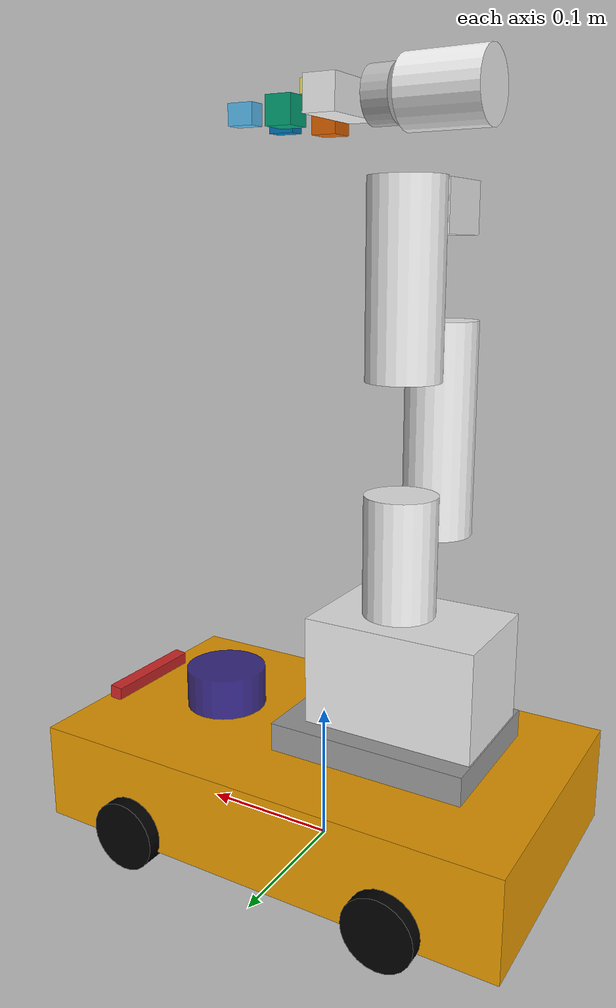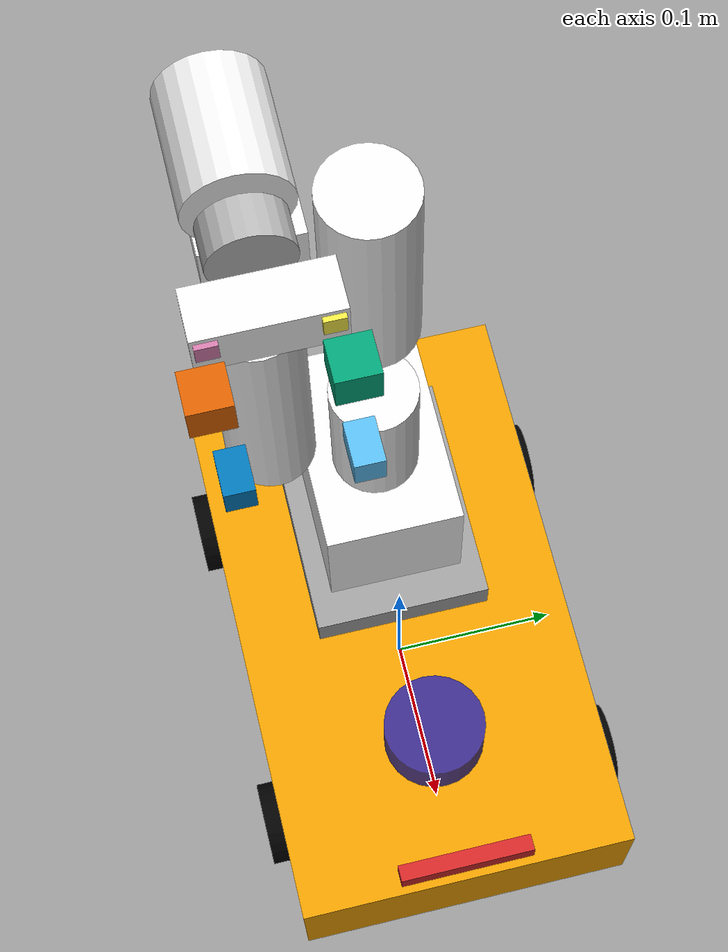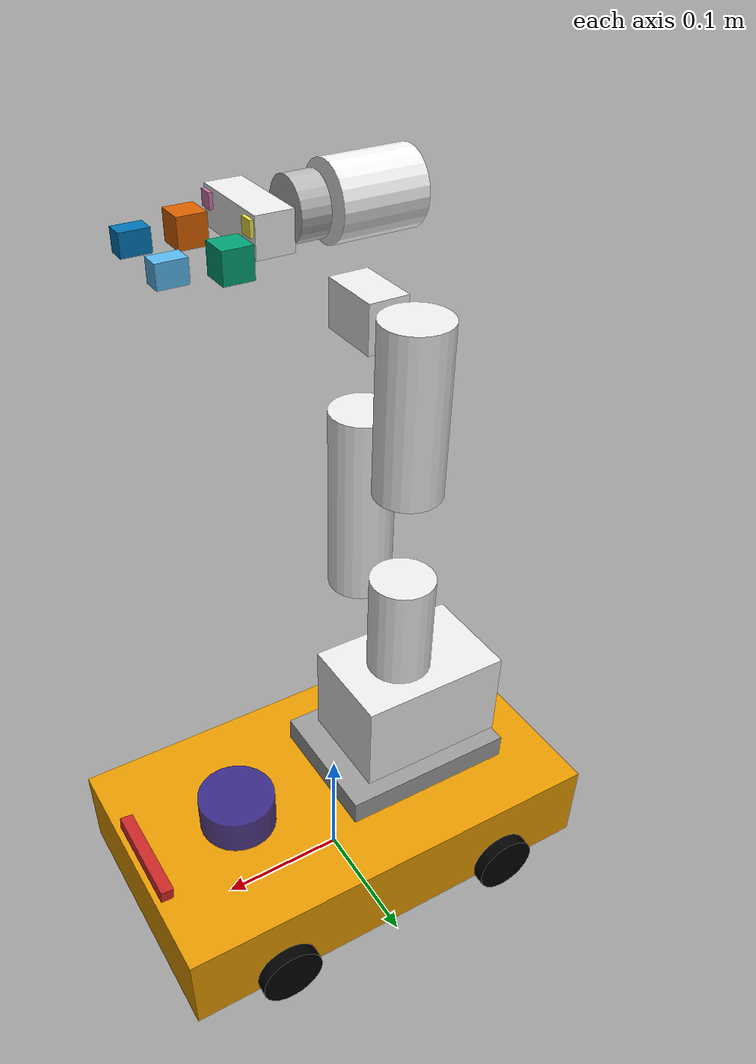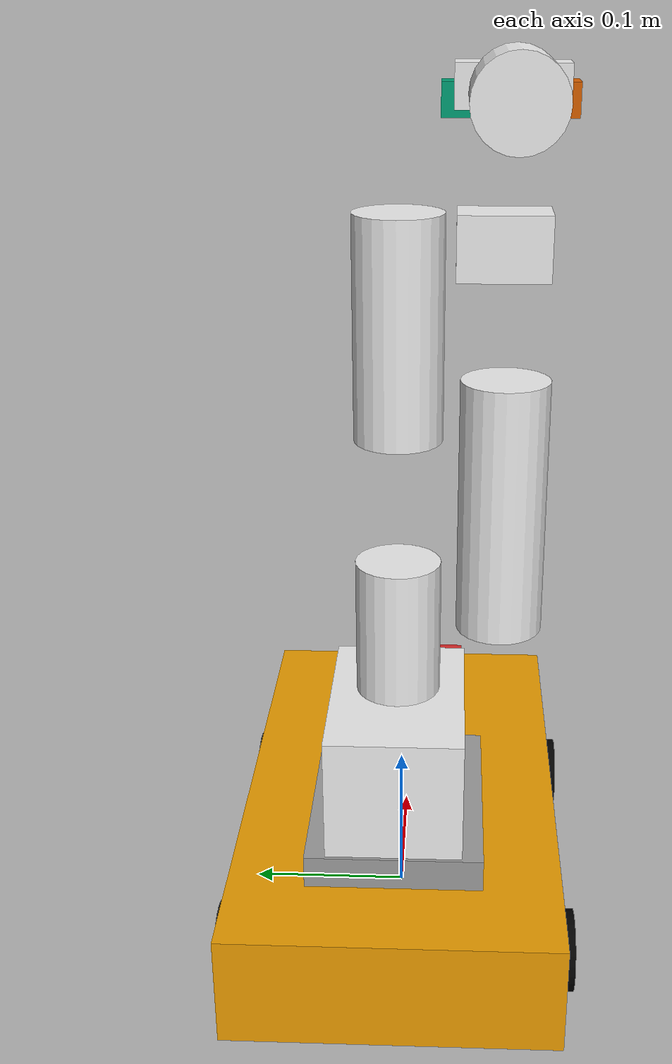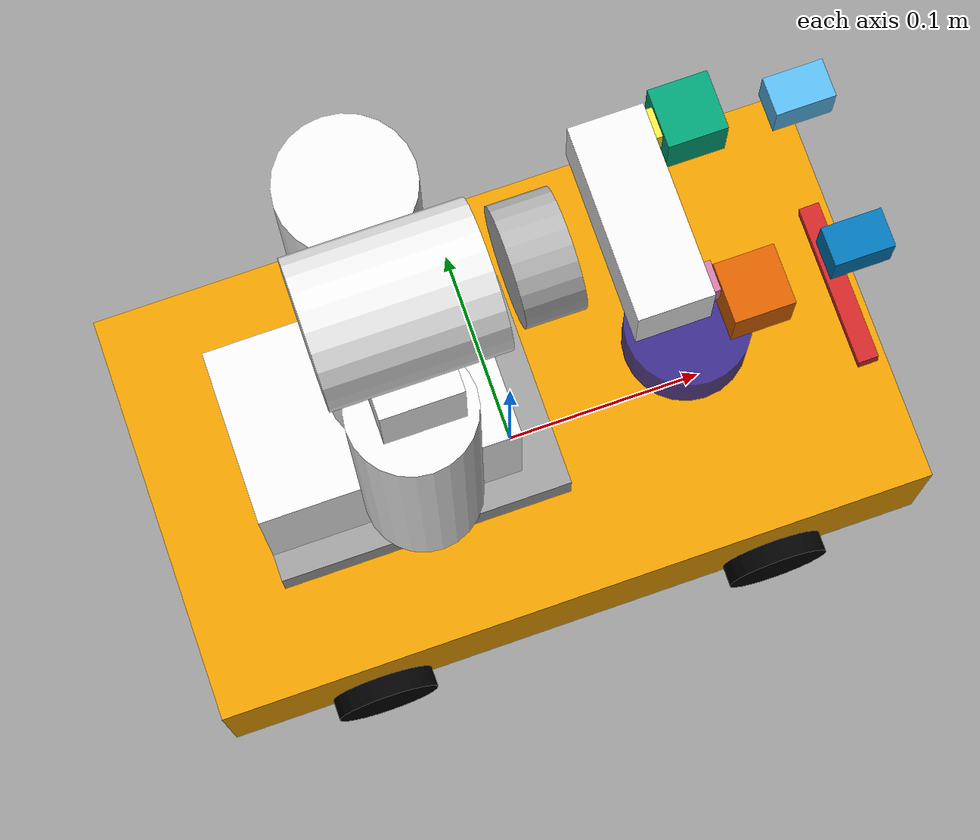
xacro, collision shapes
<robot xmlns:xacro="http://www.ros.org/wiki/xacro" name="car">
    <xacro:include filename="$(find robotpi_demo_robot_description)/urdf/car_base/car_base.urdf.xacro" />
    <xacro:include filename="$(find robotpi_demo_robot_description)/urdf/camera/camera.urdf.xacro" />
    <xacro:include filename="$(find robotpi_demo_robot_description)/urdf/lidar/lidar.urdf.xacro" />
    <xacro:include filename="$(find robotpi_demo_robot_description)/urdf/arm/arm.urdf.xacro" />

    <xacro:arm name="arm">
        <origin xyz="${-car_length/6} 0 ${car_height / 2 + 0.03}" rpy="0 0 ${3 * PI / 2}" />
      </xacro:arm>

</robot>

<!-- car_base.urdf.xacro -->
<robot xmlns:xacro="http://ros.org/wiki/xacro">

    <xacro:property name="PI"  value="3.1415926"/>

    <xacro:property name="car_length"  value="0.35"/>
    <xacro:property name="car_width"  value="0.2"/>
    <xacro:property name="car_height"  value="0.07"/>

    <xacro:property name="wheel_radius"  value="0.025"/>
    <xacro:property name="wheel_length"  value="0.02"/>

    <xacro:property name="wheel_joint_x" value="${car_length/3.5}"/>
    <xacro:property name="wheel_joint_y" value="${car_width / 2}"/>
    <xacro:property name="wheel_joint_z" value="${-(car_height / 2 + distance - wheel_radius)}"/>

    <xacro:property name="distance"  value="0.015"/>

    <material name="yellow">
        <color rgba="0.9 0.6 0.0 1.0"/>
    </material>
    <material name="black">
        <color rgba="0.0 0.0 0.0 1.0"/>
    </material>

    <link name="base_footprint">
        <visual>
                <geometry>
                    <sphere radius="0.001"/>
                </geometry>
        </visual>
    </link>

    <link name="base_link">
        <visual>
            <geometry>
                <box size="${car_length} ${car_width} ${car_height}"/>
            </geometry>
            <material name="yellow"/>
        </visual>
        <collision>
            <geometry>
                <box size="${car_length} ${car_width} ${car_height}"/>
            </geometry>
        </collision>
        <inertial>
            <mass value="1.0"/>
            <origin xyz="0 0 0"/>
            <inertia ixx="0.002" ixy="0.0" ixz="0.0"
                     iyy="0.002" iyz="0.0"
                     izz="0.004"/>
        </inertial>
    </link>

    <joint name="base_link_to_base_footprint" type="fixed">
        <parent link="base_footprint"/>
        <child link="base_link"/>
        <origin xyz="0.0 0.0 ${car_height/2 + distance}" rpy="0.0 0.0 0.0"/>
    </joint>

    <xacro:macro name="wheel_func" params="link_name front_flag left_flag">
        <link name="${link_name}">
            <visual>
                <geometry>
                    <cylinder radius="${wheel_radius}" length="${wheel_length}"/>
                </geometry>
                <material name="black"/>
                <origin rpy="${PI / 2} 0.0 0.0"/>
            </visual>
            <collision>
                <geometry>
                    <cylinder radius="${wheel_radius}" length="${wheel_length}"/>
                </geometry>
                <origin rpy="${PI / 2} 0.0 0.0"/>
            </collision>
            <inertial>
                <mass value="0.2"/>
                <origin xyz="0 0 0"/>
                <inertia ixx="0.0001" ixy="0.0" ixz="0.0"
                         iyy="0.0001" iyz="0.0"
                         izz="0.0002"/>
            </inertial>
        </link>
        <joint name="${link_name}_to_base_link" type="continuous">
            <parent link="base_link"/>
            <child link="${link_name}"/>
            <origin xyz="${wheel_joint_x * front_flag} ${wheel_joint_y * left_flag} ${wheel_joint_z}"/>
            <axis xyz="0.0 1.0 0.0"/>
        </joint>
    </xacro:macro>

    <xacro:wheel_func link_name="front_left" front_flag="1" left_flag="1"/>
    <xacro:wheel_func link_name="front_right" front_flag="1" left_flag="-1"/>
    <xacro:wheel_func link_name="back_left" front_flag="-1" left_flag="1"/>
    <xacro:wheel_func link_name="back_right" front_flag="-1" left_flag="-1"/>

        <!-- Plugin for wheels -->
    <gazebo>
        <plugin name="diff_drive_controller" filename="libgazebo_ros_diff_drive.so">

            <left_joint>front_left_to_base_link</left_joint>
            <right_joint>front_right_to_base_link</right_joint>

            <wheel_separation>${car_width}</wheel_separation>
            <wheel_diameter>${wheel_radius*2}</wheel_diameter>

            <command_topic>/cmd_vel</command_topic>
            <odometry_topic>/odom</odometry_topic>
            <odometry_frame>odom</odometry_frame>
            <robot_base_frame>base_link</robot_base_frame>

            <update_rate>50</update_rate>
            <publish_rate>50</publish_rate>

            <max_wheel_torque>5.0</max_wheel_torque>
        </plugin>
    </gazebo>

    <gazebo reference="base_link">
        <material>Gazebo/Yellow</material>
    </gazebo>

    <gazebo reference="front_left">
        <material>Gazebo/Black</material>
    </gazebo>
    <gazebo reference="front_right">
        <material>Gazebo/Black</material>
    </gazebo>
    <gazebo reference="back_left">
        <material>Gazebo/Black</material>
    </gazebo>
    <gazebo reference="back_right">
        <material>Gazebo/Black</material>
    </gazebo>
</robot>

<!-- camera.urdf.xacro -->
<robot xmlns:xacro="http://www.ros.org/wiki/xacro" >

    <xacro:property name="camera_x"  value="0.01"/>
    <xacro:property name="camera_y"  value="0.08"/>
    <xacro:property name="camera_z"  value="0.01"/>

    <xacro:property name="camera_joint_x"  value="${car_length / 2 - 0.01}"/>
    <xacro:property name="camera_joint_y"  value="0"/>
    <xacro:property name="camera_joint_z"  value="${car_height / 2 + camera_z / 2}"/>

    <link name="camera">
        <visual>
            <geometry>
                <box size="${camera_x} ${camera_y} ${camera_z}"/>
            </geometry>
        </visual>
        <collision>
            <geometry>
                <box size="${camera_x} ${camera_y} ${camera_z}"/>
            </geometry>
        </collision>
        <inertial>
            <mass value="0.1"/> <!-- 设定摄像头的质量 -->
            <origin xyz="0 0 0"/>
            <inertia ixx="0.000001" ixy="0.0" ixz="0.0"
                     iyy="0.000001" iyz="0.0"
                     izz="0.000002"/>
        </inertial>

    </link>
    <joint name="camera_to_base_link" type="fixed">
        <parent link="base_link"/>
        <child link="camera"/>
        <origin xyz="${camera_joint_x} ${camera_joint_y} ${camera_joint_z}" rpy="0.0 -0.1 0.0"/>
    </joint>

    <gazebo reference="camera">
        <sensor name="rgb_camera" type="camera">
            <always_on>1</always_on>
            <update_rate>30</update_rate>
            <visualize>true</visualize>
            <camera>
                <horizontal_fov>1.25</horizontal_fov>
                <image>
                    <width>320</width>
                    <height>240</height>
                    <format>R8G8B8</format>
                </image>
                <clip>
                    <near>0.1</near>
                    <far>100</far>
                </clip>
            </camera>
            <plugin name="gazebo_ros_camera" filename="libgazebo_ros_camera.so">
                <camera_name>rgb_camera</camera_name>
                <image_topic_name>/camera/image_raw</image_topic_name>
                <camera_info_topic_name>/camera/camera_info</camera_info_topic_name>
                <frame_name>camera_optical_frame</frame_name>
            </plugin>
        </sensor>
        <material>Gazebo/Red</material>
    </gazebo>

</robot>

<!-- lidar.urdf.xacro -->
<robot xmlns:xacro="http://www.ros.org/wiki/xacro">

    <xacro:property name="lidar_radius" value="0.03"/>
    <xacro:property name="lidar_length" value="0.03"/>

    <xacro:property name="lidar_joint_x" value="${car_length/4}"/>
    <xacro:property name="lidar_joint_y" value="0"/>
    <xacro:property name="lidar_joint_z" value="${car_height / 2 + lidar_length / 2}"/>

    <link name="lidar">
        <visual>
            <geometry>
                <cylinder radius="${lidar_radius}" length="${lidar_length}"/>
            </geometry>
            <material name="blue">
                <color rgba="0.1 0.1 0.7 0.8"/>
            </material>
        </visual>
        <collision>
            <geometry>
                <cylinder radius="${lidar_radius}" length="${lidar_length}"/>
            </geometry>
        </collision>
        <inertial>
            <mass value="0.5"/> <!-- 假设质量为0.2 kg，可根据实际情况调整 -->
            <origin xyz="0 0 0"/>
            <inertia ixx="0.0001" ixy="0.0" ixz="0.0"
                     iyy="0.0001" iyz="0.0"
                     izz="0.0002"/>
        </inertial>
    </link>
    <joint name="lidar_to_base_link" type="fixed">
        <parent link="base_link"/>
        <child link="lidar"/>
        <origin xyz="${lidar_joint_x} ${lidar_joint_y} ${lidar_joint_z}"/>
    </joint>

    <!-- Gazebo plugin for lidar sensor -->
    <gazebo reference="lidar">
        <sensor type="ray" name="lidar_sensor">
            <update_rate>62.0</update_rate>
            <visualize>true</visualize>
            <ray>
                <scan>
                    <horizontal>
                        <samples>640</samples>
                        <resolution>1</resolution>
                        <min_angle>-1.5708</min_angle> <!-- -90 degrees in radians -->
                        <max_angle>1.5708</max_angle>  <!-- 90 degrees in radians -->
                    </horizontal>
                </scan>
                <range>
                    <min>0.164</min>
                    <max>2.0</max>
                    <resolution>0.01</resolution>
                </range>
            </ray>
            <plugin name="gazebo_ros_ray_sensor" filename="libgazebo_ros_ray_sensor.so">
                <topicName>/lidar_scan</topicName>
            </plugin>
        </sensor>
        <material>Gazebo/Blue</material>
    </gazebo>

</robot>

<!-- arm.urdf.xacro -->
<robot xmlns:xacro="http://ros.org/wiki/xacro">
    <xacro:include filename="$(find robotpi_demo_robot_description)/urdf/ros2_control/demo_robot_gazebo_ros2_control.xacro"/>
    <xacro:include filename="$(find robotpi_demo_robot_description)/urdf/ros2_control/demo_robot_arm_ros2_control.xacro"/>

    <xacro:macro name="arm" params="name parent_link:=base_link *origin">

    <xacro:macro name="default_transmission" params="joint_name">
        <transmission name="transmission_${joint_name}">
            <plugin>transmission_interface/SimpleTransmission</plugin>
            <actuator name="actuator_${joint_name}" role="actuator_${joint_name}"/>
            <joint name="${joint_name}" role="${joint_name}">
                <mechanical_reduction>1.0</mechanical_reduction>
            </joint>
        </transmission>
    </xacro:macro>

    <xacro:property name="link_name" value="${name}"/>
    <xacro:property name="joint_name" value="${name}_joint"/>

    <xacro:property name="effort" value="87"/>
    <xacro:property name="velocity" value="2.792527"/>

    <link name="${link_name}">
        <inertial>
            <origin xyz="0 0 0.0" rpy="0 0 0"/>
            <mass value="0.33"/>
            <inertia
            ixx="0.000784" ixy="0.0" ixz="0.0"
            iyy="0.000867" iyz="0.0"
                izz="0.001598"/>
            </inertial>
            <visual>
                <geometry>
                    <mesh filename="file://$(find robotpi_demo_robot_description)/meshes/mycobot_280/base_link.dae"/>
                </geometry>
                <origin xyz = "0.0 0 -0.03" rpy = "0 0 ${PI/2}"/>
            </visual>
            <collision>
                <geometry>
                    <box size="0.105 0.14 0.02"/>
                </geometry>
                <origin xyz = "0.0 0 -0.015" rpy = "0 0 0"/>
            </collision>
    </link>

    <link name="link1">
            <inertial>
                <origin xyz="0 0 0.0" rpy="0 0 0"/>
                <mass value="0.12"/>
                <inertia
                ixx="0.000148" ixy="0.0" ixz="0.0"
                iyy="0.000148" iyz="0.0"
                izz="0.000096"/>
            </inertial>
            <visual>
                <geometry>
                    <mesh filename="file://$(find robotpi_demo_robot_description)/meshes/mycobot_280/link1.dae"/>
                </geometry>
                <origin xyz = "0.0 0 0 " rpy = " 0 0 ${- PI / 2}"/>
            </visual>
        <collision>
            <geometry>
                <box size="0.08 0.12 0.075"/>
            </geometry>
            <origin xyz = "0.0 -0.01 0.034" rpy = " 0 0 0"/>
        </collision>
    </link>

    <link name="link2">
        <inertial>
            <origin xyz="0 0 0.0" rpy="0 0 0"/>
            <mass value="0.19"/>
            <inertia
                ixx="0.000148" ixy="0.0" ixz="0.0"
                iyy="0.000148" iyz="0.0"
                izz="0.000096"/>
        </inertial>
        <visual>
            <geometry>
                <mesh filename="file://$(find robotpi_demo_robot_description)/meshes/mycobot_280/link2.dae"/>
            </geometry>
            <origin xyz = "0.0 0 -0.06096" rpy = " 0 0 ${-PI/2}"/>
        </visual>
        <collision>
            <geometry>
                <cylinder radius="0.025" length="0.085"/>
            </geometry>
            <origin xyz = "0.0 0 -0.02" rpy = " 0 0 ${-PI/2}"/>
        </collision>
    </link>

    <link name="link3">
		<inertial>
			<origin xyz="0 0 0.0" rpy="0 0 0"/>
		  	<mass value="0.16"/>
			<inertia
			  ixx="0.000148" ixy="0.0" ixz="0.0"
			  iyy="0.000148" iyz="0.0"
			  izz="0.000096"/>
		</inertial>
		<visual>
		  	<geometry>
		   		<mesh filename="file://$(find robotpi_demo_robot_description)/meshes/mycobot_280/link3.dae"/>
		  	</geometry>
			<origin xyz = "0.0 0 0.03256 " rpy = " 0 ${-PI/2} 0"/>
		</visual>
		<collision>
			<geometry>
				<cylinder radius="0.025" length="0.15"/>
			</geometry>
			<origin xyz = "-0.058 0 0.059" rpy = "0 ${-PI/2} 0"/>
		</collision>
	</link>

    <link name="link4">
		<inertial>
		  	<origin xyz="0 0 0.0" rpy="0 0 0"/>
			<mass value="0.124"/>
			<inertia
			  	ixx="0.000103" ixy="0.0" ixz="0.0"
			  	iyy="0.000103" iyz="0.0"
			  	izz="0.000096"/>
		</inertial>
		<visual>
			<geometry>
				<mesh filename="file://$(find robotpi_demo_robot_description)/meshes/mycobot_280/link4.dae"/>
			</geometry>
			<origin xyz = "0.0 0 0.03056 " rpy = " 0 ${-PI/2} 0"/>
		</visual>
		<collision>
			<geometry>
				<cylinder radius="0.025" length="0.125"/>
			</geometry>
			<origin xyz = "-0.05 0 0.0" rpy = "0 ${-PI/2} 0"/>
		</collision>
	</link>

	<link name="link5">
		<inertial>
			<origin xyz="0 0 0.0" rpy="0 0 0"/>
		  	<mass value="0.11"/>
			<inertia
			  ixx="0.000103" ixy="0.0" ixz="0.0"
			  iyy="0.000103" iyz="0.0"
			  izz="0.000096"/>
		</inertial>
		<visual>
		  	<geometry>
				<mesh filename="file://$(find robotpi_demo_robot_description)/meshes/mycobot_280/link5.dae"/>
		  	</geometry>
		  	<origin xyz = "0.0 0 -0.03356 " rpy = "${-PI/2} 0 0"/>
		</visual>
		<collision>
			<geometry>
				<box size="0.03 0.035 0.05"/>
			</geometry>
			<origin xyz = "0.0 0 -0.005" rpy = "0 0.0 0"/>
		</collision>
	</link>

	<link name="link6">
		<inertial>
			<origin xyz="0 0 0.0" rpy="0 0 0"/>
		  	<mass value="0.0739"/>
			<inertia
			  ixx="0.00006649" ixy="0.0" ixz="0.0"
			  iyy="0.00006649" iyz="0.0"
			  izz="0.000096"/>
		</inertial>
		<visual>
		  	<geometry>
				<mesh filename="file://$(find robotpi_demo_robot_description)/meshes/mycobot_280/link6.dae"/>
		  	</geometry>
		  	<origin xyz = "0 0.00 -0.038" rpy = "0 0 0"/>
		</visual>
		<collision>
		   	<geometry>
		   		<cylinder radius="0.025" length="0.06"/>
		  	</geometry>
		  	<origin xyz = "0 0.00 0.0" rpy = "${-PI/2} 0 0"/>
		</collision>
	</link>

	<link name="link6_flange">
		<inertial>
			<origin xyz="0 0 0.0" rpy="0 0 0"/>
		  	<mass value="0.035"/>
		  	<inertia
				ixx="0.0000149" ixy="0.0" ixz="0.0"
				iyy="0.0000149" iyz="0.0"
				izz="0.0000196"/>
		</inertial>
		<visual>
		  	<geometry>
				<mesh filename="file://$(find robotpi_demo_robot_description)/meshes/mycobot_280/link7.dae"/>
		  	</geometry>
		  	<origin xyz = "0.0 0 -0.012 " rpy = "0 0 0"/>
		</visual>
		<collision>
		   	<geometry>
		   		<cylinder radius="0.02" length="0.02"/>
		  	</geometry>
		  	<origin xyz = "0 0.00 0.0" rpy = "0 0 0"/>
		</collision>
	</link>

	<link name="gripper_base">
		<inertial>
			<origin xyz="0 0 0.0" rpy="0 0 0"/>
		  	<mass value="0.07"/>
		  	<inertia
				ixx="0.000010725" ixy="0.0" ixz="0.0"
				iyy="0.000014392" iyz="0.0"
				izz="0.000018517"/>
		</inertial>
		<visual>
		  	<geometry>
				<mesh filename="file://$(find robotpi_demo_robot_description)/meshes/mycobot_280/gripper_base.dae"/>
		  	</geometry>
		  	<origin xyz = "0.0 0.0 -0.012" rpy = "0 0 0"/>
		</visual>
		<collision>
		   	<geometry>
		   		<box size="0.065 0.025 0.025"/>
		  	</geometry>
		  	<origin xyz = "0.0 0.0 0.0" rpy = "0 0 0"/>
		</collision>
	</link>

	<link name="gripper_left1">
		<inertial>
			<origin xyz="0 0 0.0" rpy="0 0 0"/>
		  	<mass value="0.007"/>
		  	<inertia
				ixx="1e-6" ixy="0.0" ixz="0.0"
				iyy="1e-6" iyz="0.0"
				izz="1e-6"/>
		</inertial>
		<visual>
		  	<geometry>
		  		<mesh filename="file://$(find robotpi_demo_robot_description)/meshes/mycobot_280/gripper_left1.dae"/>
		  	</geometry>
			<origin xyz = "0.039 -0.0133 -0.012 " rpy = " 0 0 0"/>
		</visual>
		<collision>
		  	<geometry>
		   		<box size="0.013 0.02 0.015"/>
		  	</geometry>
			<origin xyz = "0.013 0.042 -0.010 " rpy = " 0 0 0"/>
		</collision>
	</link>

	<link name="gripper_left2">
		<inertial>
			<origin xyz="0 0 0.0" rpy="0 0 0"/>
		  	<mass value="0.007"/>
		  	<inertia
				ixx="1e-6" ixy="0.0" ixz="0.0"
				iyy="1e-6" iyz="0.0"
				izz="1e-6"/>
		</inertial>
		<visual>
		  	<geometry>
		   		<mesh filename="file://$(find robotpi_demo_robot_description)/meshes/mycobot_280/gripper_left2.dae"/>
		  	</geometry>
			<origin xyz = "0.005 -0.0195 -0.012 " rpy = " 0 0 0"/>
		</visual>
		<collision>
		  	<geometry>
		   		<box size="0.02 0.02 0.02"/>
		  	</geometry>
			<origin xyz = "-0.025 0.0 -0.010 " rpy = " 0 0 0"/>
		</collision>
	</link>

	<link name="gripper_left3">
		<inertial>
			<origin xyz="0 0 0.0" rpy="0 0 0"/>
		  	<mass value="0.007"/>
		  	<inertia
				ixx="1e-6" ixy="0.0" ixz="0.0"
				iyy="1e-6" iyz="0.0"
				izz="1e-6"/>
		</inertial>
		<visual>
		  	<geometry>
		   		<mesh filename="file://$(find robotpi_demo_robot_description)/meshes/mycobot_280/gripper_left3.dae"/>
		  	</geometry>
		<origin xyz = "0.012 0.0025 -0.012 " rpy = " 0 0 0"/>
		</visual>
		<collision>
		  	<geometry>
		   		<box size="0.01 0.01 0.01"/>
		  	</geometry>
			<origin xyz = "-0.014 0.005 0.005 " rpy = " 0 0 0"/>
		</collision>
	</link>

	<link name="gripper_right1">
		<inertial>
			<origin xyz="0 0 0.0" rpy="0 0 0"/>
		  	<mass value="0.007"/>
		  	<inertia
				ixx="1e-6" ixy="0.0" ixz="0.0"
				iyy="1e-6" iyz="0.0"
				izz="1e-6"/>
		</inertial>
		<visual>
			<geometry>
		   		<mesh filename="file://$(find robotpi_demo_robot_description)/meshes/mycobot_280/gripper_right1.dae"/>
		  	</geometry>
			<origin xyz = "-0.039 -0.0133 -0.012 " rpy = " 0 0 0"/>
		</visual>
		<collision>
		  	<geometry>
		   		<box size="0.013 0.02 0.015"/>
		  	</geometry>
			<origin xyz = "-0.013 0.042 -0.010 " rpy = " 0 0 0"/>
		</collision>
	</link>

	<link name="gripper_right2">
		<inertial>
			<origin xyz="0 0 0.0" rpy="0 0 0"/>
		  	<mass value="0.007"/>
		  	<inertia
				ixx="1e-6" ixy="0.0" ixz="0.0"
				iyy="1e-6" iyz="0.0"
				izz="1e-6"/>
		</inertial>
		<visual>
			<geometry>
		   		<mesh filename="file://$(find robotpi_demo_robot_description)/meshes/mycobot_280/gripper_right2.dae"/>
		 	</geometry>
			<origin xyz = "-0.005 -0.0195 -0.012 " rpy = " 0 0 0"/>
		</visual>
		<collision>
		  	<geometry>
		   		<box size="0.02 0.02 0.02"/>
		  	</geometry>
			<origin xyz = "0.025 0.0 -0.010 " rpy = " 0 0 0"/>
		</collision>
	</link>

	<link name="gripper_right3">
		<inertial>
			<origin xyz="0 0 0.0" rpy="0 0 0"/>
		  	<mass value="0.007"/>
		  	<inertia
				ixx="1e-6" ixy="0.0" ixz="0.0"
				iyy="1e-6" iyz="0.0"
				izz="1e-6"/>
		</inertial>
		<visual>
			<geometry>
		   		<mesh filename="file://$(find robotpi_demo_robot_description)/meshes/mycobot_280/gripper_right3.dae"/>
			</geometry>
			<origin xyz = "-0.012 0.0025 -0.012 " rpy = " 0 0 0"/>
		</visual>
		<collision>
		  	<geometry>
		   		<box size="0.01 0.01 0.01"/>
		  	</geometry>
			<origin xyz = "0.014 0.005 0.005 " rpy = " 0 0 0"/>
		</collision>
	</link>

    <!-- Joints -->
    <joint name="${joint_name}" type="fixed">
        <parent link="${parent_link}"/>
        <child link="${link_name}"/>
        <xacro:insert_block name="origin"/>
    </joint>

    <joint name="arm_base_to_link1" type="fixed">
        <limit effort = "${effort}" lower = "${-PI}" upper = "${PI}" velocity = "${velocity}"/>
        <parent link="${link_name}"/>
        <child link="link1"/>
        <origin xyz= "0 0 0" rpy = "0 0 0"/>
    </joint>

    <joint name="link1_to_link2" type="revolute">
        <axis xyz="0 0 1"/>
        <limit effort = "${effort}" lower = "-2.879793" upper = "2.879793" velocity = "${velocity}"/>
        <parent link="link1"/>
        <child link="link2"/>
        <origin xyz= "0 0 0.13156" rpy = "0 0 ${PI/2}"/>
        <dynamics damping="12.0" friction="6.0"/>
    </joint>

    <joint name="link2_to_link3" type="revolute">
		<axis xyz="0 0 1"/>
		<limit effort = "${effort}" lower = "-2.879793" upper = "2.879793" velocity = "${velocity}"/>
		<parent link="link2"/>
		<child link="link3"/>
		<origin xyz= "0 0 -0.001" rpy = "0 ${PI/2} ${-PI/2}"/>
	</joint>

    <joint name="link3_to_link4" type="revolute">
		<axis xyz=" 0 0 1"/>
		<limit effort = "${effort}" lower = "-2.879793" upper = "2.879793" velocity = "${velocity}"/>
		<parent link="link3"/>
		<child link="link4"/>
		<origin xyz= "-0.1104 0 0   " rpy = "0 0 0"/>
	</joint>

	<joint name="link4_to_link5" type="revolute">
		<axis xyz=" 0 0 1"/>
		<limit effort = "${effort}" lower = "-2.879793" upper = "2.879793" velocity = "${velocity}"/>
		<parent link="link4"/>
		<child link="link5"/>
		<origin xyz= "-0.096 0 0.06062" rpy = "0 0 ${-PI/2}"/>
	</joint>

	<joint name="link5_to_link6" type="revolute">
		<axis xyz=" 0 0 1"/>
		<limit effort = "${effort}" lower = "-2.879793" upper = "2.879793" velocity = "${velocity}"/>
		<parent link="link5"/>
		<child link="link6"/>
		<origin xyz= "0 -0.07318 0" rpy = "${PI/2} ${-PI/2} 0"/>
	</joint>

	<joint name="link6_to_link6flange" type="revolute">
		<axis xyz=" 0 0 1"/>
		<limit effort = "${effort}" lower = "-3.05" upper = "3.05" velocity = "${velocity}"/>
		<parent link="link6"/>
		<child link="link6_flange"/>
		<origin xyz= "0 0.0456 0" rpy = "${-PI/2} 0 0"/>
	</joint>

	<joint name="link6flange_to_gripper_base" type="fixed">
		<parent link="link6_flange"/>
		<child link="gripper_base"/>
		<origin xyz= "0 0 0.034" rpy = "1.579 0 0"/>
	</joint>

	<joint name="gripper_controller" type="revolute">
		<axis xyz="0 0 1"/>
		<limit effort = "${effort}" lower = "-0.7" upper = "0.15" velocity = "${velocity}"/>
		<parent link="gripper_base"/>
		<child link="gripper_left3"/>
		<origin xyz= "-0.012 0.005 0" rpy = "0 0 0"/>
	</joint>

	<!-- The mimic element means this joint will follow the movements of the
		gripper_controller joint.
	-->
	<joint name="gripper_base_to_gripper_left2" type="revolute">
		<axis xyz="0 0 1"/>
		<limit effort = "${effort}" lower = "-0.8" upper = "0.5" velocity = "${velocity}"/>
		<parent link="gripper_base"/>
		<child link="gripper_left2"/>
		<origin xyz= "-0.005 0.027 0" rpy = "0 0 0"/>
		<mimic joint="gripper_controller" multiplier="1.0" offset="0" />
	</joint>

	<joint name="gripper_left3_to_gripper_left1" type="revolute">
		<axis xyz="0 0 1"/>
		<limit effort = "${effort}" lower = "-0.5" upper = "0.5" velocity = "${velocity}"/>
		<parent link="gripper_left3"/>
		<child link="gripper_left1"/>
		<origin xyz= "-0.027 0.016 0" rpy = "0 0 0"/>
		<mimic joint="gripper_controller" multiplier="-1.0" offset="0" />
	</joint>

	<joint name="gripper_base_to_gripper_right3" type="revolute">
		<axis xyz="0 0 1"/>
		<limit effort = "${effort}" lower = "-0.15" upper = "0.7" velocity = "${velocity}"/>
		<parent link="gripper_base"/>
		<child link="gripper_right3"/>
		<origin xyz= "0.012 0.005 0" rpy = "0 0 0"/>
		<mimic joint="gripper_controller" multiplier="-1.0" offset="0" />
	</joint>

	<joint name="gripper_base_to_gripper_right2" type="revolute">
		<axis xyz="0 0 1"/>
		<limit effort = "${effort}" lower = "-0.5" upper = "0.8" velocity = "${velocity}"/>
		<parent link="gripper_base"/>
		<child link="gripper_right2"/>
		<origin xyz= "0.005 0.027 0" rpy = "0 0 0"/>
		<mimic joint="gripper_controller" multiplier="-1.0" offset="0" />
	</joint>

	<joint name="gripper_right3_to_gripper_right1" type="revolute">
		<axis xyz="0 0 1"/>
		<limit effort = "${effort}" lower = "-0.5" upper = "0.5" velocity = "${velocity}"/>
		<parent link="gripper_right3"/>
		<child link="gripper_right1"/>
		<origin xyz= "0.027 0.016 0" rpy = "0 0 0"/>
		<mimic joint="gripper_controller" multiplier="1.0" offset="0" />
	</joint>

    <xacro:default_transmission joint_name="link1_to_link2"/>
    <xacro:default_transmission joint_name="link2_to_link3"/>
    <xacro:default_transmission joint_name="link3_to_link4"/>
    <xacro:default_transmission joint_name="link4_to_link5"/>
    <xacro:default_transmission joint_name="link5_to_link6"/>
    <xacro:default_transmission joint_name="link6_to_link6flange"/>
	<xacro:default_transmission joint_name="gripper_controller"/>

    <gazebo reference="arm">
        <material>Gazebo/Grey</material>
    </gazebo>
    <gazebo reference="link1">
        <material>Gazebo/White</material>
    </gazebo>
    <gazebo reference="link2">
        <material>Gazebo/White</material>
    </gazebo>
    <gazebo reference="link3">
        <material>Gazebo/White</material>
    </gazebo>
    <gazebo reference="link4">
        <material>Gazebo/White</material>
    </gazebo>
    <gazebo reference="link5">
        <material>Gazebo/White</material>
    </gazebo>
    <gazebo reference="link6">
        <material>Gazebo/White</material>
    </gazebo>
    <gazebo reference="link6flange">
        <material>Gazebo/White</material>
    </gazebo>
	<gazebo reference="gripper_base">
        <material>Gazebo/White</material>
    </gazebo>

    </xacro:macro>
</robot>
